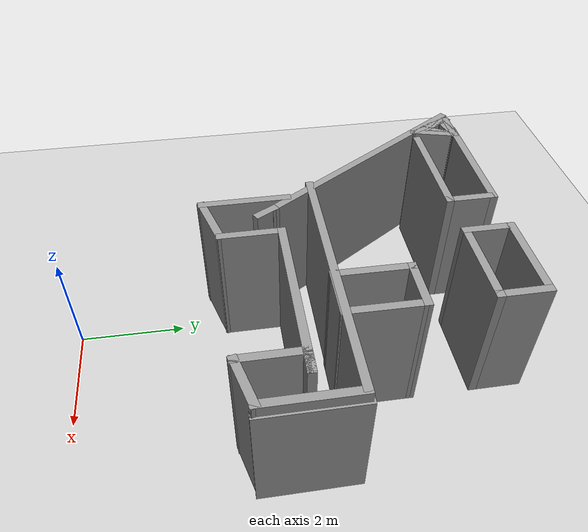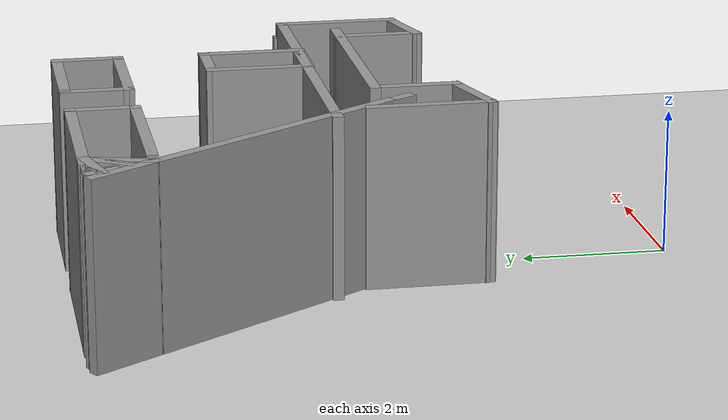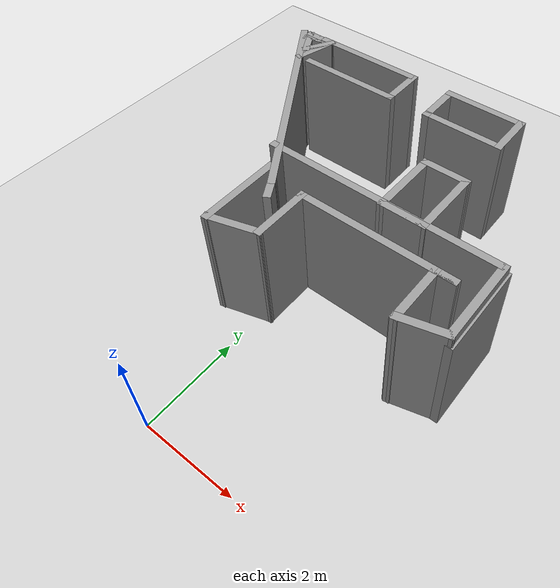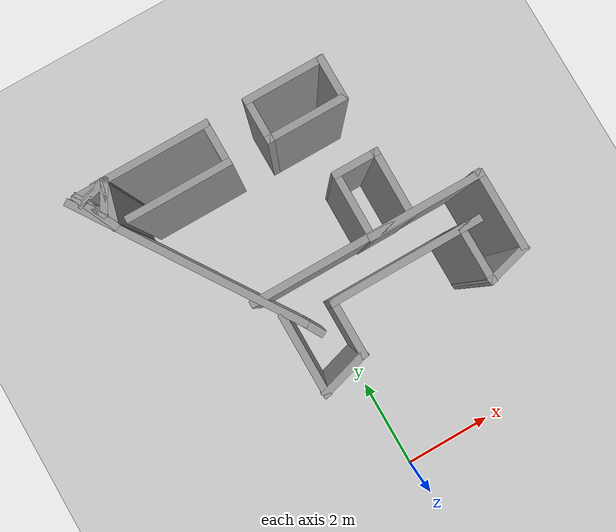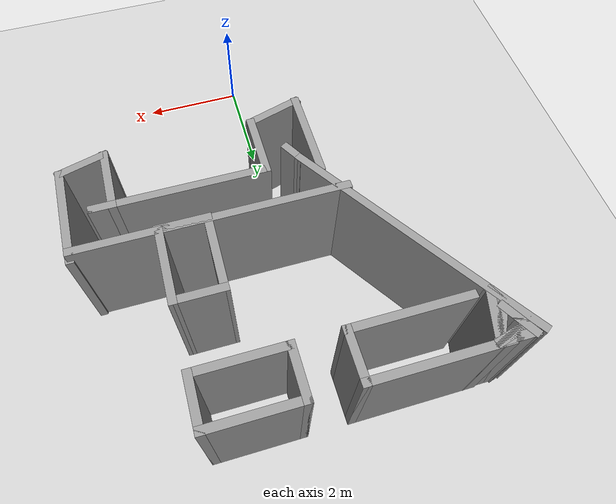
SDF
<sdf version="1.7">
 <world name="default">
  <model name="ground_plane">
   <static>1</static>
   <link name="link">
    <collision name="collision">
     <geometry><plane><normal>0 0 1</normal><size>100 100</size></plane></geometry>
     <surface><friction><ode><mu>100</mu><mu2>50</mu2></ode></friction></surface>
    </collision>
    <visual name="visual">
     <cast_shadows>0</cast_shadows>
     <geometry><plane><normal>0 0 1</normal><size>100 100</size></plane></geometry>
     <material>
      <script><uri>file://media/materials/scripts/gazebo.material</uri><name>Gazebo/Grey</name></script>
     </material>
    </visual>
   </link>
  </model>
  <model name="Untitled_0_clone">
   <pose>0.28562 4.58124 0 0 -0 0</pose>
   <link name="Wall_28">
    <collision name="Wall_28_Collision">
     <geometry><box><size>5.05917 0.15 2.5</size></box></geometry>
     <pose>0 0 1.25 0 -0 0</pose>
    </collision>
    <visual name="Wall_28_Visual">
     <pose>0 0 1.25 0 -0 0</pose>
     <geometry><box><size>5.05917 0.15 2.5</size></box></geometry>
     <material>
      <script><uri>file://media/materials/scripts/gazebo.material</uri><name>Gazebo/Grey</name></script>
      <ambient>1 1 1 1</ambient>
     </material>
     <meta><layer>0</layer></meta>
    </visual>
    <pose>-2.10639 1.43926 0 0 -0 2.15315</pose>
   </link>
   <link name="Wall_30">
    <collision name="Wall_30_Collision">
     <geometry><box><size>5 0.15 2.5</size></box></geometry>
     <pose>0 0 1.25 0 -0 0</pose>
    </collision>
    <visual name="Wall_30_Visual">
     <pose>0 0 1.25 0 -0 0</pose>
     <geometry><box><size>5 0.15 2.5</size></box></geometry>
     <material>
      <script><uri>file://media/materials/scripts/gazebo.material</uri><name>Gazebo/Grey</name></script>
      <ambient>1 1 1 1</ambient>
     </material>
     <meta><layer>0</layer></meta>
    </visual>
    <pose>1.04342 0.171913 0 0 -0 0</pose>
   </link>
   <link name="Wall_31">
    <collision name="Wall_31_Collision">
     <geometry><box><size>1.75 0.15 2.5</size></box></geometry>
     <pose>0 0 1.25 0 -0 0</pose>
    </collision>
    <visual name="Wall_31_Visual">
     <pose>0 0 1.25 0 -0 0</pose>
     <geometry><box><size>1.75 0.15 2.5</size></box></geometry>
     <material>
      <script><uri>file://media/materials/scripts/gazebo.material</uri><name>Gazebo/Grey</name></script>
      <ambient>1 1 1 1</ambient>
     </material>
     <meta><layer>0</layer></meta>
    </visual>
    <pose>3.46842 -0.628087 0 0 -0 -1.5708</pose>
   </link>
   <link name="Wall_32">
    <collision name="Wall_32_Collision">
     <geometry><box><size>1 0.15 2.5</size></box></geometry>
     <pose>0 0 1.25 0 -0 0</pose>
    </collision>
    <visual name="Wall_32_Visual">
     <pose>0 0 1.25 0 -0 0</pose>
     <geometry><box><size>1 0.15 2.5</size></box></geometry>
     <material>
      <script><uri>file://media/materials/scripts/gazebo.material</uri><name>Gazebo/Grey</name></script>
      <ambient>1 1 1 1</ambient>
     </material>
     <meta><layer>0</layer></meta>
    </visual>
    <pose>3.0579 -1.53808 0 0 -0 -2.87979</pose>
   </link>
   <link name="Wall_33">
    <collision name="Wall_33_Collision">
     <geometry><box><size>1.25 0.15 2.5</size></box></geometry>
     <pose>0 0 1.25 0 -0 0</pose>
    </collision>
    <visual name="Wall_33_Visual">
     <pose>0 0 1.25 0 -0 0</pose>
     <geometry><box><size>1.25 0.15 2.5</size></box></geometry>
     <material>
      <script><uri>file://media/materials/scripts/gazebo.material</uri><name>Gazebo/Grey</name></script>
      <ambient>1 1 1 1</ambient>
     </material>
     <meta><layer>0</layer></meta>
    </visual>
    <pose>2.64738 -1.09808 0 0 -0 1.5708</pose>
   </link>
   <link name="Wall_34">
    <collision name="Wall_34_Collision">
     <geometry><box><size>0.5 0.15 2.5</size></box></geometry>
     <pose>0 0 1.25 0 -0 0</pose>
    </collision>
    <visual name="Wall_34_Visual">
     <pose>0 0 1.25 0 -0 0</pose>
     <geometry><box><size>0.5 0.15 2.5</size></box></geometry>
     <material>
      <script><uri>file://media/materials/scripts/gazebo.material</uri><name>Gazebo/Grey</name></script>
      <ambient>1 1 1 1</ambient>
     </material>
     <meta><layer>0</layer></meta>
    </visual>
    <pose>2.82238 -0.548083 0 0 -0 0</pose>
   </link>
   <link name="Wall_35">
    <collision name="Wall_35_Collision">
     <geometry><box><size>3.25 0.15 2.5</size></box></geometry>
     <pose>0 0 1.25 0 -0 0</pose>
    </collision>
    <visual name="Wall_35_Visual">
     <pose>0 0 1.25 0 -0 0</pose>
     <geometry><box><size>3.25 0.15 2.5</size></box></geometry>
     <material>
      <script><uri>file://media/materials/scripts/gazebo.material</uri><name>Gazebo/Grey</name></script>
      <ambient>1 1 1 1</ambient>
     </material>
     <meta><layer>0</layer></meta>
    </visual>
    <pose>1.44738 -0.548083 0 0 -0 3.14159</pose>
   </link>
   <link name="Wall_38">
    <collision name="Wall_38_Collision">
     <geometry><box><size>1.25 0.15 2.5</size></box></geometry>
     <pose>0 0 1.25 0 -0 0</pose>
    </collision>
    <visual name="Wall_38_Visual">
     <pose>0 0 1.25 0 -0 0</pose>
     <geometry><box><size>1.25 0.15 2.5</size></box></geometry>
     <material>
      <script><uri>file://media/materials/scripts/gazebo.material</uri><name>Gazebo/Grey</name></script>
      <ambient>1 1 1 1</ambient>
     </material>
     <meta><layer>0</layer></meta>
    </visual>
    <pose>-0.102616 -1.09808 0 0 -0 -1.5708</pose>
   </link>
   <link name="Wall_42">
    <collision name="Wall_42_Collision">
     <geometry><box><size>0.5 0.15 2.5</size></box></geometry>
     <pose>0 0 1.25 0 -0 0</pose>
    </collision>
    <visual name="Wall_42_Visual">
     <pose>0 0 1.25 0 -0 0</pose>
     <geometry><box><size>0.5 0.15 2.5</size></box></geometry>
     <material>
      <script><uri>file://media/materials/scripts/gazebo.material</uri><name>Gazebo/Grey</name></script>
      <ambient>1 1 1 1</ambient>
     </material>
     <meta><layer>0</layer></meta>
    </visual>
    <pose>-0.668889 -0.762292 0 0 -0 -1.0472</pose>
   </link>
   <link name="Wall_48">
    <collision name="Wall_48_Collision">
     <geometry><box><size>1.75 0.15 2.5</size></box></geometry>
     <pose>0 0 1.25 0 -0 0</pose>
    </collision>
    <visual name="Wall_48_Visual">
     <pose>0 0 1.25 0 -0 0</pose>
     <geometry><box><size>1.75 0.15 2.5</size></box></geometry>
     <material>
      <script><uri>file://media/materials/scripts/gazebo.material</uri><name>Gazebo/Grey</name></script>
      <ambient>1 1 1 1</ambient>
     </material>
     <meta><layer>0</layer></meta>
    </visual>
    <pose>-1.04802 -1.12336 0 0 -0 -1.5708</pose>
   </link>
   <link name="Wall_49">
    <collision name="Wall_49_Collision">
     <geometry><box><size>1.13466 0.15 2.5</size></box></geometry>
     <pose>0 0 1.25 0 -0 0</pose>
    </collision>
    <visual name="Wall_49_Visual">
     <pose>0 0 1.25 0 -0 0</pose>
     <geometry><box><size>1.13466 0.15 2.5</size></box></geometry>
     <material>
      <script><uri>file://media/materials/scripts/gazebo.material</uri><name>Gazebo/Grey</name></script>
      <ambient>1 1 1 1</ambient>
     </material>
     <meta><layer>0</layer></meta>
    </visual>
    <pose>-0.575317 -1.78572 0 0 -0 0.283337</pose>
   </link>
   <static>1</static>
  </model>
  <model name="Untitled">
   <pose>1.93506 2.43356 0 0 -0 0</pose>
   <link name="Wall_43">
    <collision name="Wall_43_Collision">
     <geometry><box><size>1.8 0.15 2.3</size></box></geometry>
     <pose>0 0 1.15 0 -0 0</pose>
    </collision>
    <visual name="Wall_43_Visual">
     <pose>0 0 1.15 0 -0 0</pose>
     <geometry><box><size>1.8 0.15 2.3</size></box></geometry>
     <material>
      <script><uri>file://media/materials/scripts/gazebo.material</uri><name>Gazebo/Grey</name></script>
      <ambient>1 1 1 1</ambient>
     </material>
     <meta><layer>0</layer></meta>
    </visual>
    <pose>1.86006 1.53356 0 0 -0 1.5708</pose>
   </link>
   <static>1</static>
  </model>
  <model name="Untitled_1">
   <pose>-1.55227 4.10179 0 0 -0 0</pose>
   <link name="Wall_10">
    <collision name="Wall_10_Collision">
     <geometry><box><size>0.75 0.15 2.5</size></box></geometry>
     <pose>0 0 1.25 0 -0 0</pose>
    </collision>
    <visual name="Wall_10_Visual">
     <pose>0 0 1.25 0 -0 0</pose>
     <geometry><box><size>0.75 0.15 2.5</size></box></geometry>
     <material>
      <script><uri>file://media/materials/scripts/gazebo.material</uri><name>Gazebo/Grey</name></script>
      <ambient>1 1 1 1</ambient>
     </material>
     <meta><layer>0</layer></meta>
    </visual>
    <pose>-0.999813 3.73953 0 0 -0 1.0472</pose>
   </link>
   <link name="Wall_11">
    <collision name="Wall_11_Collision">
     <geometry><box><size>0.75 0.15 2.5</size></box></geometry>
     <pose>0 0 1.25 0 -0 0</pose>
    </collision>
    <visual name="Wall_11_Visual">
     <pose>0 0 1.25 0 -0 0</pose>
     <geometry><box><size>0.75 0.15 2.5</size></box></geometry>
     <material>
      <script><uri>file://media/materials/scripts/gazebo.material</uri><name>Gazebo/Grey</name></script>
      <ambient>1 1 1 1</ambient>
     </material>
     <meta><layer>0</layer></meta>
    </visual>
    <pose>-1.14981 3.99934 0 0 -0 3.14159</pose>
   </link>
   <link name="Wall_12">
    <collision name="Wall_12_Collision">
     <geometry><box><size>0.75 0.15 2.5</size></box></geometry>
     <pose>0 0 1.25 0 -0 0</pose>
    </collision>
    <visual name="Wall_12_Visual">
     <pose>0 0 1.25 0 -0 0</pose>
     <geometry><box><size>0.75 0.15 2.5</size></box></geometry>
     <material>
      <script><uri>file://media/materials/scripts/gazebo.material</uri><name>Gazebo/Grey</name></script>
      <ambient>1 1 1 1</ambient>
     </material>
     <meta><layer>0</layer></meta>
    </visual>
    <pose>-1.29981 3.73953 0 0 -0 -1.0472</pose>
   </link>
   <link name="Wall_13">
    <collision name="Wall_13_Collision">
     <geometry><box><size>0.75 0.15 2.5</size></box></geometry>
     <pose>0 0 1.25 0 -0 0</pose>
    </collision>
    <visual name="Wall_13_Visual">
     <pose>0 0 1.25 0 -0 0</pose>
     <geometry><box><size>0.75 0.15 2.5</size></box></geometry>
     <material>
      <script><uri>file://media/materials/scripts/gazebo.material</uri><name>Gazebo/Grey</name></script>
      <ambient>1 1 1 1</ambient>
     </material>
     <meta><layer>0</layer></meta>
    </visual>
    <pose>-0.999813 3.73953 0 0 -0 1.0472</pose>
   </link>
   <link name="Wall_14">
    <collision name="Wall_14_Collision">
     <geometry><box><size>0.75 0.15 2.5</size></box></geometry>
     <pose>0 0 1.25 0 -0 0</pose>
    </collision>
    <visual name="Wall_14_Visual">
     <pose>0 0 1.25 0 -0 0</pose>
     <geometry><box><size>0.75 0.15 2.5</size></box></geometry>
     <material>
      <script><uri>file://media/materials/scripts/gazebo.material</uri><name>Gazebo/Grey</name></script>
      <ambient>1 1 1 1</ambient>
     </material>
     <meta><layer>0</layer></meta>
    </visual>
    <pose>-1.13959 3.92169 0 0 -0 -2.87979</pose>
   </link>
   <link name="Wall_15">
    <collision name="Wall_15_Collision">
     <geometry><box><size>0.75 0.15 2.5</size></box></geometry>
     <pose>0 0 1.25 0 -0 0</pose>
    </collision>
    <visual name="Wall_15_Visual">
     <pose>0 0 1.25 0 -0 0</pose>
     <geometry><box><size>0.75 0.15 2.5</size></box></geometry>
     <material>
      <script><uri>file://media/materials/scripts/gazebo.material</uri><name>Gazebo/Grey</name></script>
      <ambient>1 1 1 1</ambient>
     </material>
     <meta><layer>0</layer></meta>
    </visual>
    <pose>-1.13959 3.92169 0 0 -0 0.261799</pose>
   </link>
   <link name="Wall_4">
    <collision name="Wall_4_Collision">
     <geometry><box><size>0.75 0.15 2.5</size></box></geometry>
     <pose>0 0 1.25 0 -0 0</pose>
    </collision>
    <visual name="Wall_4_Visual">
     <pose>0 0 1.25 0 -0 0</pose>
     <geometry><box><size>0.75 0.15 2.5</size></box></geometry>
     <material>
      <script><uri>file://media/materials/scripts/gazebo.material</uri><name>Gazebo/Grey</name></script>
      <ambient>1 1 1 1</ambient>
     </material>
     <meta><layer>0</layer></meta>
    </visual>
    <pose>-1.29981 3.73953 0 0 -0 2.0944</pose>
   </link>
   <link name="Wall_5">
    <collision name="Wall_5_Collision">
     <geometry><box><size>0.75 0.15 2.5</size></box></geometry>
     <pose>0 0 1.25 0 -0 0</pose>
    </collision>
    <visual name="Wall_5_Visual">
     <pose>0 0 1.25 0 -0 0</pose>
     <geometry><box><size>0.75 0.15 2.5</size></box></geometry>
     <material>
      <script><uri>file://media/materials/scripts/gazebo.material</uri><name>Gazebo/Grey</name></script>
      <ambient>1 1 1 1</ambient>
     </material>
     <meta><layer>0</layer></meta>
    </visual>
    <pose>-1.14981 3.99934 0 0 -0 0</pose>
   </link>
   <link name="Wall_6">
    <collision name="Wall_6_Collision">
     <geometry><box><size>1 0.15 2.5</size></box></geometry>
     <pose>0 0 1.25 0 -0 0</pose>
    </collision>
    <visual name="Wall_6_Visual">
     <pose>0 0 1.25 0 -0 0</pose>
     <geometry><box><size>1 0.15 2.5</size></box></geometry>
     <material>
      <script><uri>file://media/materials/scripts/gazebo.material</uri><name>Gazebo/Grey</name></script>
      <ambient>1 1 1 1</ambient>
     </material>
     <meta><layer>0</layer></meta>
    </visual>
    <pose>-0.959811 3.58882 0 0 -0 -1.8326</pose>
   </link>
   <link name="Wall_7">
    <collision name="Wall_7_Collision">
     <geometry><box><size>1.05471 0.15 2.5</size></box></geometry>
     <pose>0 0 1.25 0 -0 0</pose>
    </collision>
    <visual name="Wall_7_Visual">
     <pose>0 0 1.25 0 -0 0</pose>
     <geometry><box><size>1.05471 0.15 2.5</size></box></geometry>
     <material>
      <script><uri>file://media/materials/scripts/gazebo.material</uri><name>Gazebo/Grey</name></script>
      <ambient>1 1 1 1</ambient>
     </material>
     <meta><layer>0</layer></meta>
    </visual>
    <pose>-1.25981 3.58882 0 0 -0 2.00427</pose>
   </link>
   <link name="Wall_8">
    <collision name="Wall_8_Collision">
     <geometry><box><size>0.75 0.15 2.5</size></box></geometry>
     <pose>0 0 1.25 0 -0 0</pose>
    </collision>
    <visual name="Wall_8_Visual">
     <pose>0 0 1.25 0 -0 0</pose>
     <geometry><box><size>0.75 0.15 2.5</size></box></geometry>
     <material>
      <script><uri>file://media/materials/scripts/gazebo.material</uri><name>Gazebo/Grey</name></script>
      <ambient>1 1 1 1</ambient>
     </material>
     <meta><layer>0</layer></meta>
    </visual>
    <pose>-1.14981 3.99934 0 0 -0 0</pose>
   </link>
   <link name="Wall_9">
    <collision name="Wall_9_Collision">
     <geometry><box><size>0.75 0.15 2.5</size></box></geometry>
     <pose>0 0 1.25 0 -0 0</pose>
    </collision>
    <visual name="Wall_9_Visual">
     <pose>0 0 1.25 0 -0 0</pose>
     <geometry><box><size>0.75 0.15 2.5</size></box></geometry>
     <material>
      <script><uri>file://media/materials/scripts/gazebo.material</uri><name>Gazebo/Grey</name></script>
      <ambient>1 1 1 1</ambient>
     </material>
     <meta><layer>0</layer></meta>
    </visual>
    <pose>-0.999813 3.73953 0 0 -0 -2.0944</pose>
   </link>
   <static>1</static>
  </model>
  <model name="Untitled_4">
   <pose>-0.159083 4.09887 0 0 -0 0</pose>
   <link name="Wall_32">
    <collision name="Wall_32_Collision">
     <geometry><box><size>2.5 0.15 2.5</size></box></geometry>
     <pose>0 0 1.25 0 -0 0</pose>
    </collision>
    <visual name="Wall_32_Visual">
     <pose>0 0 1.25 0 -0 0</pose>
     <geometry><box><size>2.5 0.15 2.5</size></box></geometry>
     <material>
      <script><uri>file://media/materials/scripts/gazebo.material</uri><name>Gazebo/Grey</name></script>
      <ambient>1 1 1 1</ambient>
     </material>
     <meta><layer>0</layer></meta>
    </visual>
    <pose>-1.25031 4.02387 0 0 -0 0</pose>
   </link>
   <link name="Wall_33">
    <collision name="Wall_33_Collision">
     <geometry><box><size>1 0.15 2.5</size></box></geometry>
     <pose>0 0 1.25 0 -0 0</pose>
    </collision>
    <visual name="Wall_33_Visual">
     <pose>0 0 1.25 0 -0 0</pose>
     <geometry><box><size>1 0.15 2.5</size></box></geometry>
     <material>
      <script><uri>file://media/materials/scripts/gazebo.material</uri><name>Gazebo/Grey</name></script>
      <ambient>1 1 1 1</ambient>
     </material>
     <meta><layer>0</layer></meta>
    </visual>
    <pose>-0.075313 3.59887 0 0 -0 -1.5708</pose>
   </link>
   <link name="Wall_34">
    <collision name="Wall_34_Collision">
     <geometry><box><size>2.25 0.15 2.5</size></box></geometry>
     <pose>0 0 1.25 0 -0 0</pose>
    </collision>
    <visual name="Wall_34_Visual">
     <pose>0 0 1.25 0 -0 0</pose>
     <geometry><box><size>2.25 0.15 2.5</size></box></geometry>
     <material>
      <script><uri>file://media/materials/scripts/gazebo.material</uri><name>Gazebo/Grey</name></script>
      <ambient>1 1 1 1</ambient>
     </material>
     <meta><layer>0</layer></meta>
    </visual>
    <pose>-1.12531 3.17387 0 0 -0 3.14159</pose>
   </link>
   <link name="Wall_36">
    <collision name="Wall_36_Collision">
     <geometry><box><size>1.75 0.15 2.5</size></box></geometry>
     <pose>0 0 1.25 0 -0 0</pose>
    </collision>
    <visual name="Wall_36_Visual">
     <pose>0 0 1.25 0 -0 0</pose>
     <geometry><box><size>1.75 0.15 2.5</size></box></geometry>
     <material>
      <script><uri>file://media/materials/scripts/gazebo.material</uri><name>Gazebo/Grey</name></script>
      <ambient>1 1 1 1</ambient>
     </material>
     <meta><layer>0</layer></meta>
    </visual>
    <pose>1.62469 3.17387 0 0 -0 3.14159</pose>
   </link>
   <link name="Wall_37">
    <collision name="Wall_37_Collision">
     <geometry><box><size>1 0.15 2.5</size></box></geometry>
     <pose>0 0 1.25 0 -0 0</pose>
    </collision>
    <visual name="Wall_37_Visual">
     <pose>0 0 1.25 0 -0 0</pose>
     <geometry><box><size>1 0.15 2.5</size></box></geometry>
     <material>
      <script><uri>file://media/materials/scripts/gazebo.material</uri><name>Gazebo/Grey</name></script>
      <ambient>1 1 1 1</ambient>
     </material>
     <meta><layer>0</layer></meta>
    </visual>
    <pose>0.824687 3.59887 0 0 -0 1.5708</pose>
   </link>
   <link name="Wall_38">
    <collision name="Wall_38_Collision">
     <geometry><box><size>1.75 0.15 2.5</size></box></geometry>
     <pose>0 0 1.25 0 -0 0</pose>
    </collision>
    <visual name="Wall_38_Visual">
     <pose>0 0 1.25 0 -0 0</pose>
     <geometry><box><size>1.75 0.15 2.5</size></box></geometry>
     <material>
      <script><uri>file://media/materials/scripts/gazebo.material</uri><name>Gazebo/Grey</name></script>
      <ambient>1 1 1 1</ambient>
     </material>
     <meta><layer>0</layer></meta>
    </visual>
    <pose>1.62469 4.02387 0 0 -0 0</pose>
   </link>
   <link name="Wall_39">
    <collision name="Wall_39_Collision">
     <geometry><box><size>1 0.15 2.5</size></box></geometry>
     <pose>0 0 1.25 0 -0 0</pose>
    </collision>
    <visual name="Wall_39_Visual">
     <pose>0 0 1.25 0 -0 0</pose>
     <geometry><box><size>1 0.15 2.5</size></box></geometry>
     <material>
      <script><uri>file://media/materials/scripts/gazebo.material</uri><name>Gazebo/Grey</name></script>
      <ambient>1 1 1 1</ambient>
     </material>
     <meta><layer>0</layer></meta>
    </visual>
    <pose>2.42469 3.59887 0 0 -0 -1.5708</pose>
   </link>
   <link name="Wall_44">
    <collision name="Wall_44_Collision">
     <geometry><box><size>1 0.15 2.5</size></box></geometry>
     <pose>0 0 1.25 0 -0 0</pose>
    </collision>
    <visual name="Wall_44_Visual">
     <pose>0 0 1.25 0 -0 0</pose>
     <geometry><box><size>1 0.15 2.5</size></box></geometry>
     <material>
      <script><uri>file://media/materials/scripts/gazebo.material</uri><name>Gazebo/Grey</name></script>
      <ambient>1 1 1 1</ambient>
     </material>
     <meta><layer>0</layer></meta>
    </visual>
    <pose>1.99969 1.97387 0 0 -0 3.14159</pose>
   </link>
   <link name="Wall_53">
    <collision name="Wall_53_Collision">
     <geometry><box><size>1 0.15 2.5</size></box></geometry>
     <pose>0 0 1.25 0 -0 0</pose>
    </collision>
    <visual name="Wall_53_Visual">
     <pose>0 0 1.25 0 -0 0</pose>
     <geometry><box><size>1 0.15 2.5</size></box></geometry>
     <material>
      <script><uri>file://media/materials/scripts/gazebo.material</uri><name>Gazebo/Grey</name></script>
      <ambient>1 1 1 1</ambient>
     </material>
     <meta><layer>0</layer></meta>
    </visual>
    <pose>1.98842 0.631121 0 0 -0 0</pose>
   </link>
   <link name="Wall_55">
    <collision name="Wall_55_Collision">
     <geometry><box><size>2.5 0.15 2.5</size></box></geometry>
     <pose>0 0 1.25 0 -0 0</pose>
    </collision>
    <visual name="Wall_55_Visual">
     <pose>0 0 1.25 0 -0 0</pose>
     <geometry><box><size>2.5 0.15 2.5</size></box></geometry>
     <material>
      <script><uri>file://media/materials/scripts/gazebo.material</uri><name>Gazebo/Grey</name></script>
      <ambient>1 1 1 1</ambient>
     </material>
     <meta><layer>0</layer></meta>
    </visual>
    <pose>-1.25031 4.02387 0 0 -0 0</pose>
   </link>
   <link name="Wall_57">
    <collision name="Wall_57_Collision">
     <geometry><box><size>1.49279 0.15 2.5</size></box></geometry>
     <pose>0 0 1.25 0 -0 0</pose>
    </collision>
    <visual name="Wall_57_Visual">
     <pose>0 0 1.25 0 -0 0</pose>
     <geometry><box><size>1.49279 0.15 2.5</size></box></geometry>
     <material>
      <script><uri>file://media/materials/scripts/gazebo.material</uri><name>Gazebo/Grey</name></script>
      <ambient>1 1 1 1</ambient>
     </material>
     <meta><layer>0</layer></meta>
    </visual>
    <pose>1.56906 1.30249 0 0 -0 -1.57918</pose>
   </link>
   <link name="Wall_59">
    <collision name="Wall_59_Collision">
     <geometry><box><size>1.49279 0.15 2.5</size></box></geometry>
     <pose>0 0 1.25 0 -0 0</pose>
    </collision>
    <visual name="Wall_59_Visual">
     <pose>0 0 1.25 0 -0 0</pose>
     <geometry><box><size>1.49279 0.15 2.5</size></box></geometry>
     <material>
      <script><uri>file://media/materials/scripts/gazebo.material</uri><name>Gazebo/Grey</name></script>
      <ambient>1 1 1 1</ambient>
     </material>
     <meta><layer>0</layer></meta>
    </visual>
    <pose>2.41906 1.30249 0 0 -0 -1.57918</pose>
   </link>
   <static>1</static>
  </model>
 </world>
</sdf>
